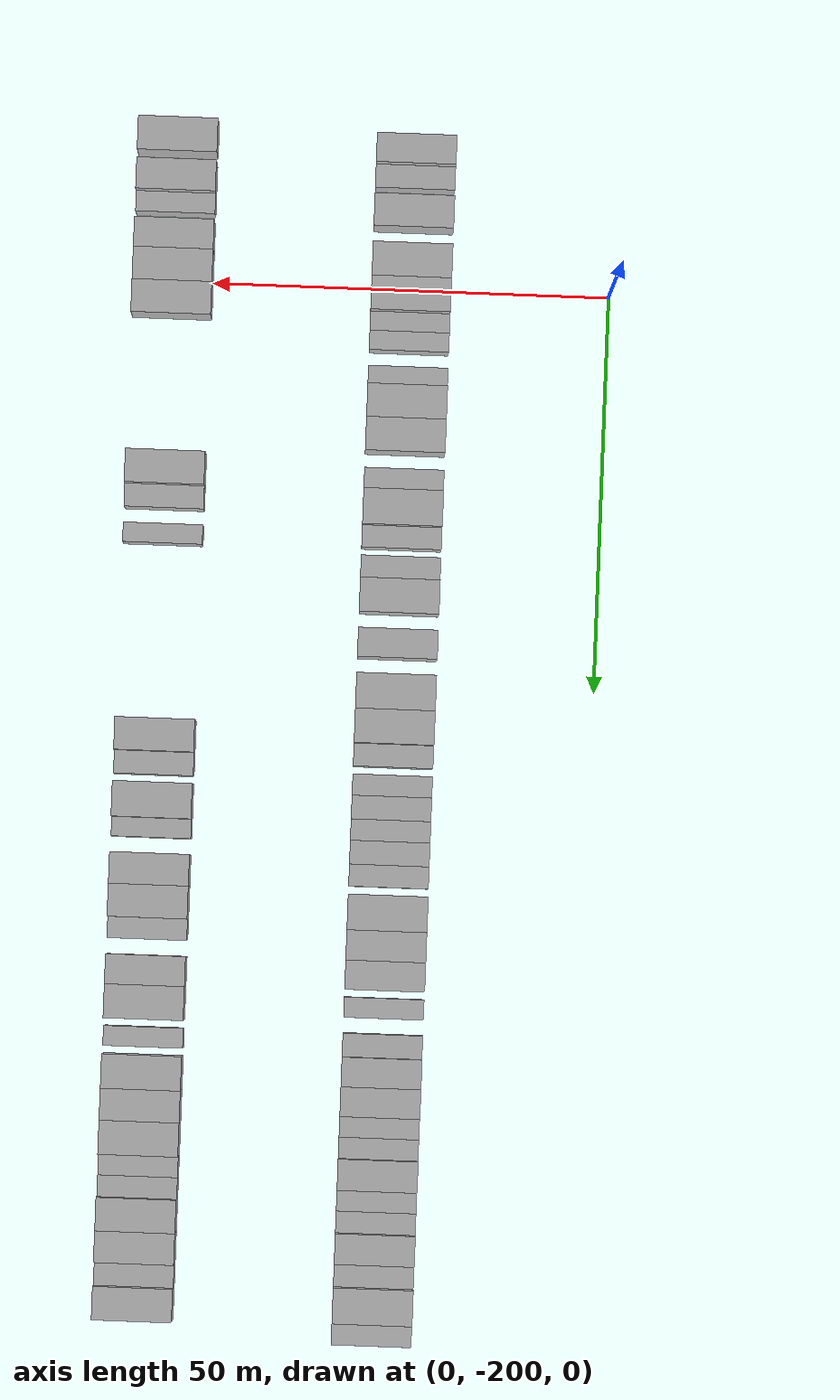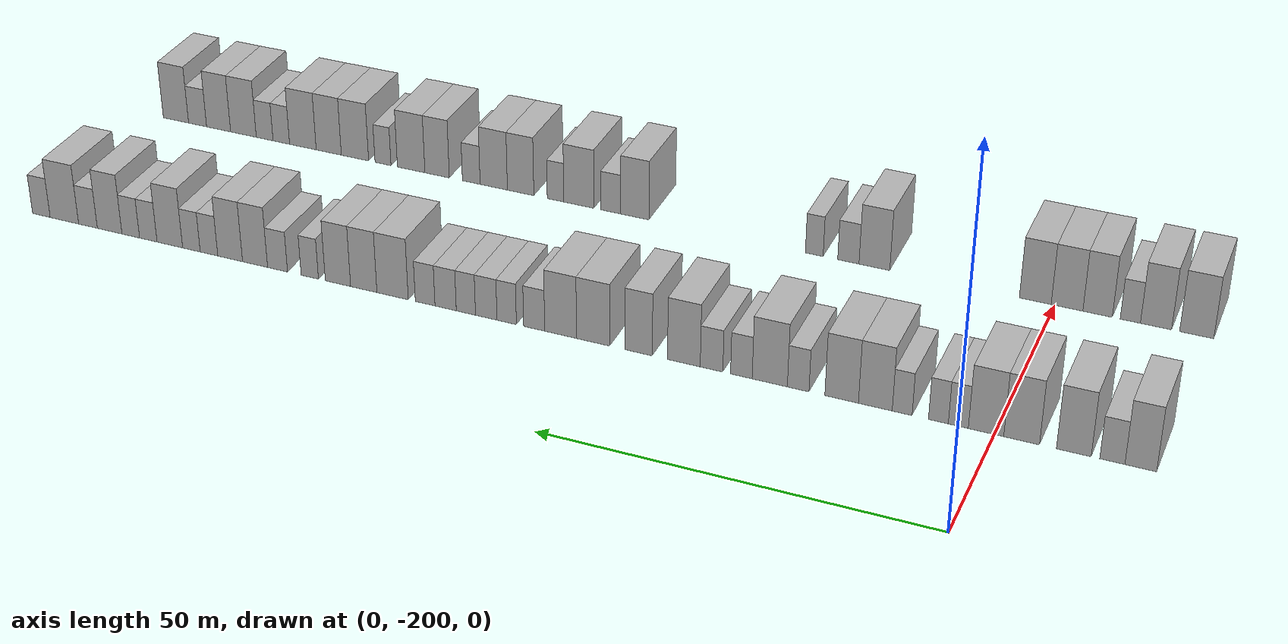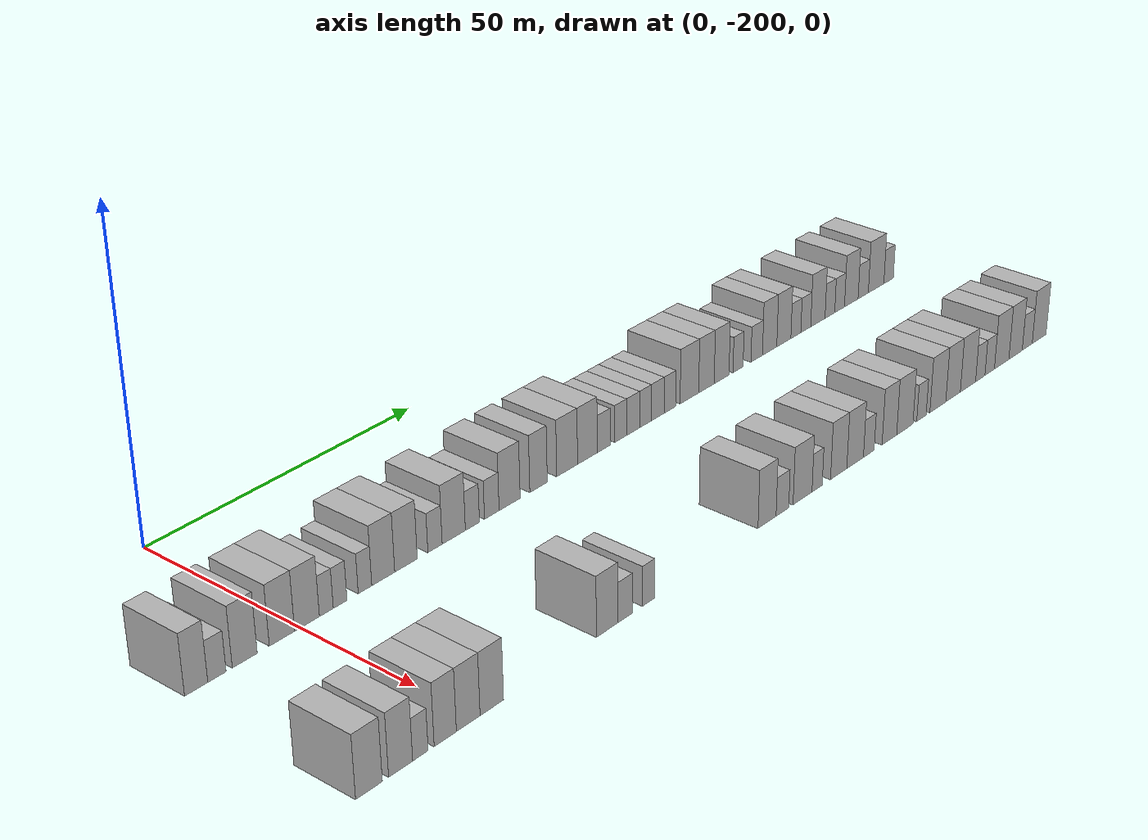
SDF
<sdf version="1.6">
 <world name="default">
  <model name="building_1">
   <static>1</static>
   <pose>25.0000 -217.1671 0 0.000000 0.000000 0.000000</pose>
   <link name="link">
    <pose>0 0 4.50 0 0 0</pose>
    <collision name="collision"><geometry><box><size>10.0000 3.6659 9.0000</size></box></geometry></collision>
    <visual name="visual">
     <cast_shadows>0</cast_shadows>
     <geometry><box><size>10.0000 3.6659 9.0000</size></box></geometry>
     <material>
      <script>
       <uri>model://HANNAS_wall/materials/scripts</uri>
       <uri>model://HANNAS_wall/materials/textures</uri>
       <name>vrc/HANNAS_wall</name>
      </script>
     </material>
    </visual>
   </link>
  </model>
  <model name="building_2">
   <static>1</static>
   <pose>25.0000 -213.8735 0 0.000000 0.000000 0.000000</pose>
   <link name="link">
    <pose>0 0 3.00 0 0 0</pose>
    <collision name="collision"><geometry><box><size>10.0000 2.9212 6.0000</size></box></geometry></collision>
    <visual name="visual">
     <cast_shadows>0</cast_shadows>
     <geometry><box><size>10.0000 2.9212 6.0000</size></box></geometry>
     <material>
      <script>
       <uri>model://HANNAS_wall/materials/scripts</uri>
       <uri>model://HANNAS_wall/materials/textures</uri>
       <name>vrc/HANNAS_wall</name>
      </script>
     </material>
    </visual>
   </link>
  </model>
  <model name="building_3">
   <static>1</static>
   <pose>25.0000 -209.3716 0 0.000000 0.000000 0.000000</pose>
   <link name="link">
    <pose>0 0 4.50 0 0 0</pose>
    <collision name="collision"><geometry><box><size>10.0000 4.0827 9.0000</size></box></geometry></collision>
    <visual name="visual">
     <cast_shadows>0</cast_shadows>
     <geometry><box><size>10.0000 4.0827 9.0000</size></box></geometry>
     <material>
      <script>
       <uri>model://HANNAS_wall/materials/scripts</uri>
       <uri>model://HANNAS_wall/materials/textures</uri>
       <name>vrc/HANNAS_wall</name>
      </script>
     </material>
    </visual>
   </link>
  </model>
  <model name="building_4">
   <static>1</static>
   <pose>25.0000 -203.2001 0 0.000000 0.000000 0.000000</pose>
   <link name="link">
    <pose>0 0 4.50 0 0 0</pose>
    <collision name="collision"><geometry><box><size>10.0000 4.2603 9.0000</size></box></geometry></collision>
    <visual name="visual">
     <cast_shadows>0</cast_shadows>
     <geometry><box><size>10.0000 4.2603 9.0000</size></box></geometry>
     <material>
      <script>
       <uri>model://HANNAS_wall/materials/scripts</uri>
       <uri>model://HANNAS_wall/materials/textures</uri>
       <name>vrc/HANNAS_wall</name>
      </script>
     </material>
    </visual>
   </link>
  </model>
  <model name="building_5">
   <static>1</static>
   <pose>25.0000 -198.9381 0 0.000000 0.000000 0.000000</pose>
   <link name="link">
    <pose>0 0 4.50 0 0 0</pose>
    <collision name="collision"><geometry><box><size>10.0000 4.2636 9.0000</size></box></geometry></collision>
    <visual name="visual">
     <cast_shadows>0</cast_shadows>
     <geometry><box><size>10.0000 4.2636 9.0000</size></box></geometry>
     <material>
      <script>
       <uri>model://HANNAS_wall/materials/scripts</uri>
       <uri>model://HANNAS_wall/materials/textures</uri>
       <name>vrc/HANNAS_wall</name>
      </script>
     </material>
    </visual>
   </link>
  </model>
  <model name="building_6">
   <static>1</static>
   <pose>25.0000 -195.5967 0 0.000000 0.000000 0.000000</pose>
   <link name="link">
    <pose>0 0 3.00 0 0 0</pose>
    <collision name="collision"><geometry><box><size>10.0000 2.4193 6.0000</size></box></geometry></collision>
    <visual name="visual">
     <cast_shadows>0</cast_shadows>
     <geometry><box><size>10.0000 2.4193 6.0000</size></box></geometry>
     <material>
      <script>
       <uri>model://HANNAS_wall/materials/scripts</uri>
       <uri>model://HANNAS_wall/materials/textures</uri>
       <name>vrc/HANNAS_wall</name>
      </script>
     </material>
    </visual>
   </link>
  </model>
  <model name="building_7">
   <static>1</static>
   <pose>25.0000 -193.1771 0 0.000000 0.000000 0.000000</pose>
   <link name="link">
    <pose>0 0 3.00 0 0 0</pose>
    <collision name="collision"><geometry><box><size>10.0000 2.4199 6.0000</size></box></geometry></collision>
    <visual name="visual">
     <cast_shadows>0</cast_shadows>
     <geometry><box><size>10.0000 2.4199 6.0000</size></box></geometry>
     <material>
      <script>
       <uri>model://HANNAS_wall/materials/scripts</uri>
       <uri>model://HANNAS_wall/materials/textures</uri>
       <name>vrc/HANNAS_wall</name>
      </script>
     </material>
    </visual>
   </link>
  </model>
  <model name="building_8">
   <static>1</static>
   <pose>25.0000 -188.7444 0 0.000000 0.000000 0.000000</pose>
   <link name="link">
    <pose>0 0 3.00 0 0 0</pose>
    <collision name="collision"><geometry><box><size>10.0000 2.4454 6.0000</size></box></geometry></collision>
    <visual name="visual">
     <cast_shadows>0</cast_shadows>
     <geometry><box><size>10.0000 2.4454 6.0000</size></box></geometry>
     <material>
      <script>
       <uri>model://HANNAS_wall/materials/scripts</uri>
       <uri>model://HANNAS_wall/materials/textures</uri>
       <name>vrc/HANNAS_wall</name>
      </script>
     </material>
    </visual>
   </link>
  </model>
  <model name="building_9">
   <static>1</static>
   <pose>25.0000 -185.4251 0 0.000000 0.000000 0.000000</pose>
   <link name="link">
    <pose>0 0 4.50 0 0 0</pose>
    <collision name="collision"><geometry><box><size>10.0000 4.1932 9.0000</size></box></geometry></collision>
    <visual name="visual">
     <cast_shadows>0</cast_shadows>
     <geometry><box><size>10.0000 4.1932 9.0000</size></box></geometry>
     <material>
      <script>
       <uri>model://HANNAS_wall/materials/scripts</uri>
       <uri>model://HANNAS_wall/materials/textures</uri>
       <name>vrc/HANNAS_wall</name>
      </script>
     </material>
    </visual>
   </link>
  </model>
  <model name="building_10">
   <static>1</static>
   <pose>25.0000 -181.2285 0 0.000000 0.000000 0.000000</pose>
   <link name="link">
    <pose>0 0 4.50 0 0 0</pose>
    <collision name="collision"><geometry><box><size>10.0000 4.2000 9.0000</size></box></geometry></collision>
    <visual name="visual">
     <cast_shadows>0</cast_shadows>
     <geometry><box><size>10.0000 4.2000 9.0000</size></box></geometry>
     <material>
      <script>
       <uri>model://HANNAS_wall/materials/scripts</uri>
       <uri>model://HANNAS_wall/materials/textures</uri>
       <name>vrc/HANNAS_wall</name>
      </script>
     </material>
    </visual>
   </link>
  </model>
  <model name="building_11">
   <static>1</static>
   <pose>25.0000 -175.7591 0 0.000000 0.000000 0.000000</pose>
   <link name="link">
    <pose>0 0 3.00 0 0 0</pose>
    <collision name="collision"><geometry><box><size>10.0000 2.7388 6.0000</size></box></geometry></collision>
    <visual name="visual">
     <cast_shadows>0</cast_shadows>
     <geometry><box><size>10.0000 2.7388 6.0000</size></box></geometry>
     <material>
      <script>
       <uri>model://HANNAS_wall/materials/scripts</uri>
       <uri>model://HANNAS_wall/materials/textures</uri>
       <name>vrc/HANNAS_wall</name>
      </script>
     </material>
    </visual>
   </link>
  </model>
  <model name="building_12">
   <static>1</static>
   <pose>25.0000 -172.1402 0 0.000000 0.000000 0.000000</pose>
   <link name="link">
    <pose>0 0 4.50 0 0 0</pose>
    <collision name="collision"><geometry><box><size>10.0000 4.4991 9.0000</size></box></geometry></collision>
    <visual name="visual">
     <cast_shadows>0</cast_shadows>
     <geometry><box><size>10.0000 4.4991 9.0000</size></box></geometry>
     <material>
      <script>
       <uri>model://HANNAS_wall/materials/scripts</uri>
       <uri>model://HANNAS_wall/materials/textures</uri>
       <name>vrc/HANNAS_wall</name>
      </script>
     </material>
    </visual>
   </link>
  </model>
  <model name="building_13">
   <static>1</static>
   <pose>25.0000 -168.5023 0 0.000000 0.000000 0.000000</pose>
   <link name="link">
    <pose>0 0 3.00 0 0 0</pose>
    <collision name="collision"><geometry><box><size>10.0000 2.7767 6.0000</size></box></geometry></collision>
    <visual name="visual">
     <cast_shadows>0</cast_shadows>
     <geometry><box><size>10.0000 2.7767 6.0000</size></box></geometry>
     <material>
      <script>
       <uri>model://HANNAS_wall/materials/scripts</uri>
       <uri>model://HANNAS_wall/materials/textures</uri>
       <name>vrc/HANNAS_wall</name>
      </script>
     </material>
    </visual>
   </link>
  </model>
  <model name="building_14">
   <static>1</static>
   <pose>25.0000 -164.6484 0 0.000000 0.000000 0.000000</pose>
   <link name="link">
    <pose>0 0 3.00 0 0 0</pose>
    <collision name="collision"><geometry><box><size>10.0000 2.9310 6.0000</size></box></geometry></collision>
    <visual name="visual">
     <cast_shadows>0</cast_shadows>
     <geometry><box><size>10.0000 2.9310 6.0000</size></box></geometry>
     <material>
      <script>
       <uri>model://HANNAS_wall/materials/scripts</uri>
       <uri>model://HANNAS_wall/materials/textures</uri>
       <name>vrc/HANNAS_wall</name>
      </script>
     </material>
    </visual>
   </link>
  </model>
  <model name="building_15">
   <static>1</static>
   <pose>25.0000 -161.0380 0 0.000000 0.000000 0.000000</pose>
   <link name="link">
    <pose>0 0 4.50 0 0 0</pose>
    <collision name="collision"><geometry><box><size>10.0000 4.2898 9.0000</size></box></geometry></collision>
    <visual name="visual">
     <cast_shadows>0</cast_shadows>
     <geometry><box><size>10.0000 4.2898 9.0000</size></box></geometry>
     <material>
      <script>
       <uri>model://HANNAS_wall/materials/scripts</uri>
       <uri>model://HANNAS_wall/materials/textures</uri>
       <name>vrc/HANNAS_wall</name>
      </script>
     </material>
    </visual>
   </link>
  </model>
  <model name="building_16">
   <static>1</static>
   <pose>25.0000 -155.0702 0 0.000000 0.000000 0.000000</pose>
   <link name="link">
    <pose>0 0 4.50 0 0 0</pose>
    <collision name="collision"><geometry><box><size>10.0000 3.6458 9.0000</size></box></geometry></collision>
    <visual name="visual">
     <cast_shadows>0</cast_shadows>
     <geometry><box><size>10.0000 3.6458 9.0000</size></box></geometry>
     <material>
      <script>
       <uri>model://HANNAS_wall/materials/scripts</uri>
       <uri>model://HANNAS_wall/materials/textures</uri>
       <name>vrc/HANNAS_wall</name>
      </script>
     </material>
    </visual>
   </link>
  </model>
  <model name="building_17">
   <static>1</static>
   <pose>25.0000 -149.0126 0 0.000000 0.000000 0.000000</pose>
   <link name="link">
    <pose>0 0 4.50 0 0 0</pose>
    <collision name="collision"><geometry><box><size>10.0000 4.4693 9.0000</size></box></geometry></collision>
    <visual name="visual">
     <cast_shadows>0</cast_shadows>
     <geometry><box><size>10.0000 4.4693 9.0000</size></box></geometry>
     <material>
      <script>
       <uri>model://HANNAS_wall/materials/scripts</uri>
       <uri>model://HANNAS_wall/materials/textures</uri>
       <name>vrc/HANNAS_wall</name>
      </script>
     </material>
    </visual>
   </link>
  </model>
  <model name="building_18">
   <static>1</static>
   <pose>25.0000 -144.6236 0 0.000000 0.000000 0.000000</pose>
   <link name="link">
    <pose>0 0 4.50 0 0 0</pose>
    <collision name="collision"><geometry><box><size>10.0000 4.3088 9.0000</size></box></geometry></collision>
    <visual name="visual">
     <cast_shadows>0</cast_shadows>
     <geometry><box><size>10.0000 4.3088 9.0000</size></box></geometry>
     <material>
      <script>
       <uri>model://HANNAS_wall/materials/scripts</uri>
       <uri>model://HANNAS_wall/materials/textures</uri>
       <name>vrc/HANNAS_wall</name>
      </script>
     </material>
    </visual>
   </link>
  </model>
  <model name="building_19">
   <static>1</static>
   <pose>25.0000 -141.0324 0 0.000000 0.000000 0.000000</pose>
   <link name="link">
    <pose>0 0 3.00 0 0 0</pose>
    <collision name="collision"><geometry><box><size>10.0000 2.8735 6.0000</size></box></geometry></collision>
    <visual name="visual">
     <cast_shadows>0</cast_shadows>
     <geometry><box><size>10.0000 2.8735 6.0000</size></box></geometry>
     <material>
      <script>
       <uri>model://HANNAS_wall/materials/scripts</uri>
       <uri>model://HANNAS_wall/materials/textures</uri>
       <name>vrc/HANNAS_wall</name>
      </script>
     </material>
    </visual>
   </link>
  </model>
  <model name="building_20">
   <static>1</static>
   <pose>25.0000 -137.2617 0 0.000000 0.000000 0.000000</pose>
   <link name="link">
    <pose>0 0 3.00 0 0 0</pose>
    <collision name="collision"><geometry><box><size>10.0000 2.6680 6.0000</size></box></geometry></collision>
    <visual name="visual">
     <cast_shadows>0</cast_shadows>
     <geometry><box><size>10.0000 2.6680 6.0000</size></box></geometry>
     <material>
      <script>
       <uri>model://HANNAS_wall/materials/scripts</uri>
       <uri>model://HANNAS_wall/materials/textures</uri>
       <name>vrc/HANNAS_wall</name>
      </script>
     </material>
    </visual>
   </link>
  </model>
  <model name="building_21">
   <static>1</static>
   <pose>25.0000 -134.4380 0 0.000000 0.000000 0.000000</pose>
   <link name="link">
    <pose>0 0 3.00 0 0 0</pose>
    <collision name="collision"><geometry><box><size>10.0000 2.9795 6.0000</size></box></geometry></collision>
    <visual name="visual">
     <cast_shadows>0</cast_shadows>
     <geometry><box><size>10.0000 2.9795 6.0000</size></box></geometry>
     <material>
      <script>
       <uri>model://HANNAS_wall/materials/scripts</uri>
       <uri>model://HANNAS_wall/materials/textures</uri>
       <name>vrc/HANNAS_wall</name>
      </script>
     </material>
    </visual>
   </link>
  </model>
  <model name="building_22">
   <static>1</static>
   <pose>25.0000 -131.6081 0 0.000000 0.000000 0.000000</pose>
   <link name="link">
    <pose>0 0 3.00 0 0 0</pose>
    <collision name="collision"><geometry><box><size>10.0000 2.6803 6.0000</size></box></geometry></collision>
    <visual name="visual">
     <cast_shadows>0</cast_shadows>
     <geometry><box><size>10.0000 2.6803 6.0000</size></box></geometry>
     <material>
      <script>
       <uri>model://HANNAS_wall/materials/scripts</uri>
       <uri>model://HANNAS_wall/materials/textures</uri>
       <name>vrc/HANNAS_wall</name>
      </script>
     </material>
    </visual>
   </link>
  </model>
  <model name="building_23">
   <static>1</static>
   <pose>25.0000 -128.7739 0 0.000000 0.000000 0.000000</pose>
   <link name="link">
    <pose>0 0 3.00 0 0 0</pose>
    <collision name="collision"><geometry><box><size>10.0000 2.9879 6.0000</size></box></geometry></collision>
    <visual name="visual">
     <cast_shadows>0</cast_shadows>
     <geometry><box><size>10.0000 2.9879 6.0000</size></box></geometry>
     <material>
      <script>
       <uri>model://HANNAS_wall/materials/scripts</uri>
       <uri>model://HANNAS_wall/materials/textures</uri>
       <name>vrc/HANNAS_wall</name>
      </script>
     </material>
    </visual>
   </link>
  </model>
  <model name="building_24">
   <static>1</static>
   <pose>25.0000 -125.8931 0 0.000000 0.000000 0.000000</pose>
   <link name="link">
    <pose>0 0 3.00 0 0 0</pose>
    <collision name="collision"><geometry><box><size>10.0000 2.7739 6.0000</size></box></geometry></collision>
    <visual name="visual">
     <cast_shadows>0</cast_shadows>
     <geometry><box><size>10.0000 2.7739 6.0000</size></box></geometry>
     <material>
      <script>
       <uri>model://HANNAS_wall/materials/scripts</uri>
       <uri>model://HANNAS_wall/materials/textures</uri>
       <name>vrc/HANNAS_wall</name>
      </script>
     </material>
    </visual>
   </link>
  </model>
  <model name="building_25">
   <static>1</static>
   <pose>25.0000 -121.2723 0 0.000000 0.000000 0.000000</pose>
   <link name="link">
    <pose>0 0 4.50 0 0 0</pose>
    <collision name="collision"><geometry><box><size>10.0000 4.4677 9.0000</size></box></geometry></collision>
    <visual name="visual">
     <cast_shadows>0</cast_shadows>
     <geometry><box><size>10.0000 4.4677 9.0000</size></box></geometry>
     <material>
      <script>
       <uri>model://HANNAS_wall/materials/scripts</uri>
       <uri>model://HANNAS_wall/materials/textures</uri>
       <name>vrc/HANNAS_wall</name>
      </script>
     </material>
    </visual>
   </link>
  </model>
  <model name="building_26">
   <static>1</static>
   <pose>25.0000 -117.1486 0 0.000000 0.000000 0.000000</pose>
   <link name="link">
    <pose>0 0 4.50 0 0 0</pose>
    <collision name="collision"><geometry><box><size>10.0000 3.7798 9.0000</size></box></geometry></collision>
    <visual name="visual">
     <cast_shadows>0</cast_shadows>
     <geometry><box><size>10.0000 3.7798 9.0000</size></box></geometry>
     <material>
      <script>
       <uri>model://HANNAS_wall/materials/scripts</uri>
       <uri>model://HANNAS_wall/materials/textures</uri>
       <name>vrc/HANNAS_wall</name>
      </script>
     </material>
    </visual>
   </link>
  </model>
  <model name="building_27">
   <static>1</static>
   <pose>25.0000 -113.4258 0 0.000000 0.000000 0.000000</pose>
   <link name="link">
    <pose>0 0 4.50 0 0 0</pose>
    <collision name="collision"><geometry><box><size>10.0000 3.6658 9.0000</size></box></geometry></collision>
    <visual name="visual">
     <cast_shadows>0</cast_shadows>
     <geometry><box><size>10.0000 3.6658 9.0000</size></box></geometry>
     <material>
      <script>
       <uri>model://HANNAS_wall/materials/scripts</uri>
       <uri>model://HANNAS_wall/materials/textures</uri>
       <name>vrc/HANNAS_wall</name>
      </script>
     </material>
    </visual>
   </link>
  </model>
  <model name="building_28">
   <static>1</static>
   <pose>25.0000 -109.3301 0 0.000000 0.000000 0.000000</pose>
   <link name="link">
    <pose>0 0 3.00 0 0 0</pose>
    <collision name="collision"><geometry><box><size>10.0000 2.5256 6.0000</size></box></geometry></collision>
    <visual name="visual">
     <cast_shadows>0</cast_shadows>
     <geometry><box><size>10.0000 2.5256 6.0000</size></box></geometry>
     <material>
      <script>
       <uri>model://HANNAS_wall/materials/scripts</uri>
       <uri>model://HANNAS_wall/materials/textures</uri>
       <name>vrc/HANNAS_wall</name>
      </script>
     </material>
    </visual>
   </link>
  </model>
  <model name="building_29">
   <static>1</static>
   <pose>25.0000 -104.5966 0 0.000000 0.000000 0.000000</pose>
   <link name="link">
    <pose>0 0 3.00 0 0 0</pose>
    <collision name="collision"><geometry><box><size>10.0000 2.9414 6.0000</size></box></geometry></collision>
    <visual name="visual">
     <cast_shadows>0</cast_shadows>
     <geometry><box><size>10.0000 2.9414 6.0000</size></box></geometry>
     <material>
      <script>
       <uri>model://HANNAS_wall/materials/scripts</uri>
       <uri>model://HANNAS_wall/materials/textures</uri>
       <name>vrc/HANNAS_wall</name>
      </script>
     </material>
    </visual>
   </link>
  </model>
  <model name="building_30">
   <static>1</static>
   <pose>25.0000 -101.2687 0 0.000000 0.000000 0.000000</pose>
   <link name="link">
    <pose>0 0 4.50 0 0 0</pose>
    <collision name="collision"><geometry><box><size>10.0000 3.7144 9.0000</size></box></geometry></collision>
    <visual name="visual">
     <cast_shadows>0</cast_shadows>
     <geometry><box><size>10.0000 3.7144 9.0000</size></box></geometry>
     <material>
      <script>
       <uri>model://HANNAS_wall/materials/scripts</uri>
       <uri>model://HANNAS_wall/materials/textures</uri>
       <name>vrc/HANNAS_wall</name>
      </script>
     </material>
    </visual>
   </link>
  </model>
  <model name="building_31">
   <static>1</static>
   <pose>25.0000 -97.5562 0 0.000000 0.000000 0.000000</pose>
   <link name="link">
    <pose>0 0 4.50 0 0 0</pose>
    <collision name="collision"><geometry><box><size>10.0000 3.7105 9.0000</size></box></geometry></collision>
    <visual name="visual">
     <cast_shadows>0</cast_shadows>
     <geometry><box><size>10.0000 3.7105 9.0000</size></box></geometry>
     <material>
      <script>
       <uri>model://HANNAS_wall/materials/scripts</uri>
       <uri>model://HANNAS_wall/materials/textures</uri>
       <name>vrc/HANNAS_wall</name>
      </script>
     </material>
    </visual>
   </link>
  </model>
  <model name="building_32">
   <static>1</static>
   <pose>25.0000 -94.3791 0 0.000000 0.000000 0.000000</pose>
   <link name="link">
    <pose>0 0 3.00 0 0 0</pose>
    <collision name="collision"><geometry><box><size>10.0000 2.6438 6.0000</size></box></geometry></collision>
    <visual name="visual">
     <cast_shadows>0</cast_shadows>
     <geometry><box><size>10.0000 2.6438 6.0000</size></box></geometry>
     <material>
      <script>
       <uri>model://HANNAS_wall/materials/scripts</uri>
       <uri>model://HANNAS_wall/materials/textures</uri>
       <name>vrc/HANNAS_wall</name>
      </script>
     </material>
    </visual>
   </link>
  </model>
  <model name="building_33">
   <static>1</static>
   <pose>25.0000 -91.7267 0 0.000000 0.000000 0.000000</pose>
   <link name="link">
    <pose>0 0 3.00 0 0 0</pose>
    <collision name="collision"><geometry><box><size>10.0000 2.6610 6.0000</size></box></geometry></collision>
    <visual name="visual">
     <cast_shadows>0</cast_shadows>
     <geometry><box><size>10.0000 2.6610 6.0000</size></box></geometry>
     <material>
      <script>
       <uri>model://HANNAS_wall/materials/scripts</uri>
       <uri>model://HANNAS_wall/materials/textures</uri>
       <name>vrc/HANNAS_wall</name>
      </script>
     </material>
    </visual>
   </link>
  </model>
  <model name="building_34">
   <static>1</static>
   <pose>25.0000 -88.4462 0 0.000000 0.000000 0.000000</pose>
   <link name="link">
    <pose>0 0 4.50 0 0 0</pose>
    <collision name="collision"><geometry><box><size>10.0000 3.9000 9.0000</size></box></geometry></collision>
    <visual name="visual">
     <cast_shadows>0</cast_shadows>
     <geometry><box><size>10.0000 3.9000 9.0000</size></box></geometry>
     <material>
      <script>
       <uri>model://HANNAS_wall/materials/scripts</uri>
       <uri>model://HANNAS_wall/materials/textures</uri>
       <name>vrc/HANNAS_wall</name>
      </script>
     </material>
    </visual>
   </link>
  </model>
  <model name="building_35">
   <static>1</static>
   <pose>25.0000 -85.1547 0 0.000000 0.000000 0.000000</pose>
   <link name="link">
    <pose>0 0 3.00 0 0 0</pose>
    <collision name="collision"><geometry><box><size>10.0000 2.6829 6.0000</size></box></geometry></collision>
    <visual name="visual">
     <cast_shadows>0</cast_shadows>
     <geometry><box><size>10.0000 2.6829 6.0000</size></box></geometry>
     <material>
      <script>
       <uri>model://HANNAS_wall/materials/scripts</uri>
       <uri>model://HANNAS_wall/materials/textures</uri>
       <name>vrc/HANNAS_wall</name>
      </script>
     </material>
    </visual>
   </link>
  </model>
  <model name="building_36">
   <static>1</static>
   <pose>25.0000 -82.4580 0 0.000000 0.000000 0.000000</pose>
   <link name="link">
    <pose>0 0 3.00 0 0 0</pose>
    <collision name="collision"><geometry><box><size>10.0000 2.7106 6.0000</size></box></geometry></collision>
    <visual name="visual">
     <cast_shadows>0</cast_shadows>
     <geometry><box><size>10.0000 2.7106 6.0000</size></box></geometry>
     <material>
      <script>
       <uri>model://HANNAS_wall/materials/scripts</uri>
       <uri>model://HANNAS_wall/materials/textures</uri>
       <name>vrc/HANNAS_wall</name>
      </script>
     </material>
    </visual>
   </link>
  </model>
  <model name="building_37">
   <static>1</static>
   <pose>25.0000 -79.1855 0 0.000000 0.000000 0.000000</pose>
   <link name="link">
    <pose>0 0 4.50 0 0 0</pose>
    <collision name="collision"><geometry><box><size>10.0000 3.8344 9.0000</size></box></geometry></collision>
    <visual name="visual">
     <cast_shadows>0</cast_shadows>
     <geometry><box><size>10.0000 3.8344 9.0000</size></box></geometry>
     <material>
      <script>
       <uri>model://HANNAS_wall/materials/scripts</uri>
       <uri>model://HANNAS_wall/materials/textures</uri>
       <name>vrc/HANNAS_wall</name>
      </script>
     </material>
    </visual>
   </link>
  </model>
  <model name="building_38">
   <static>1</static>
   <pose>25.0000 -75.8074 0 0.000000 0.000000 0.000000</pose>
   <link name="link">
    <pose>0 0 3.00 0 0 0</pose>
    <collision name="collision"><geometry><box><size>10.0000 2.9218 6.0000</size></box></geometry></collision>
    <visual name="visual">
     <cast_shadows>0</cast_shadows>
     <geometry><box><size>10.0000 2.9218 6.0000</size></box></geometry>
     <material>
      <script>
       <uri>model://HANNAS_wall/materials/scripts</uri>
       <uri>model://HANNAS_wall/materials/textures</uri>
       <name>vrc/HANNAS_wall</name>
      </script>
     </material>
    </visual>
   </link>
  </model>
  <model name="building_39">
   <static>1</static>
   <pose>25.0000 -72.1008 0 0.000000 0.000000 0.000000</pose>
   <link name="link">
    <pose>0 0 4.50 0 0 0</pose>
    <collision name="collision"><geometry><box><size>10.0000 4.4913 9.0000</size></box></geometry></collision>
    <visual name="visual">
     <cast_shadows>0</cast_shadows>
     <geometry><box><size>10.0000 4.4913 9.0000</size></box></geometry>
     <material>
      <script>
       <uri>model://HANNAS_wall/materials/scripts</uri>
       <uri>model://HANNAS_wall/materials/textures</uri>
       <name>vrc/HANNAS_wall</name>
      </script>
     </material>
    </visual>
   </link>
  </model>
  <model name="building_40">
   <static>1</static>
   <pose>25.0000 -68.4680 0 0.000000 0.000000 0.000000</pose>
   <link name="link">
    <pose>0 0 3.00 0 0 0</pose>
    <collision name="collision"><geometry><box><size>10.0000 2.7743 6.0000</size></box></geometry></collision>
    <visual name="visual">
     <cast_shadows>0</cast_shadows>
     <geometry><box><size>10.0000 2.7743 6.0000</size></box></geometry>
     <material>
      <script>
       <uri>model://HANNAS_wall/materials/scripts</uri>
       <uri>model://HANNAS_wall/materials/textures</uri>
       <name>vrc/HANNAS_wall</name>
      </script>
     </material>
    </visual>
   </link>
  </model>
  <model name="building_110">
   <static>1</static>
   <pose>55.0000 -217.8794 0 0.000000 0.000000 0.000000</pose>
   <link name="link">
    <pose>0 0 4.50 0 0 0</pose>
    <collision name="collision"><geometry><box><size>10.0000 4.2413 9.0000</size></box></geometry></collision>
    <visual name="visual">
     <cast_shadows>0</cast_shadows>
     <geometry><box><size>10.0000 4.2413 9.0000</size></box></geometry>
     <material>
      <script>
       <uri>model://HANNAS_wall/materials/scripts</uri>
       <uri>model://HANNAS_wall/materials/textures</uri>
       <name>vrc/HANNAS_wall</name>
      </script>
     </material>
    </visual>
   </link>
  </model>
  <model name="building_111">
   <static>1</static>
   <pose>55.0000 -212.8032 0 0.000000 0.000000 0.000000</pose>
   <link name="link">
    <pose>0 0 4.50 0 0 0</pose>
    <collision name="collision"><geometry><box><size>10.0000 3.9111 9.0000</size></box></geometry></collision>
    <visual name="visual">
     <cast_shadows>0</cast_shadows>
     <geometry><box><size>10.0000 3.9111 9.0000</size></box></geometry>
     <material>
      <script>
       <uri>model://HANNAS_wall/materials/scripts</uri>
       <uri>model://HANNAS_wall/materials/textures</uri>
       <name>vrc/HANNAS_wall</name>
      </script>
     </material>
    </visual>
   </link>
  </model>
  <model name="building_112">
   <static>1</static>
   <pose>55.0000 -209.5708 0 0.000000 0.000000 0.000000</pose>
   <link name="link">
    <pose>0 0 3.00 0 0 0</pose>
    <collision name="collision"><geometry><box><size>10.0000 2.5537 6.0000</size></box></geometry></collision>
    <visual name="visual">
     <cast_shadows>0</cast_shadows>
     <geometry><box><size>10.0000 2.5537 6.0000</size></box></geometry>
     <material>
      <script>
       <uri>model://HANNAS_wall/materials/scripts</uri>
       <uri>model://HANNAS_wall/materials/textures</uri>
       <name>vrc/HANNAS_wall</name>
      </script>
     </material>
    </visual>
   </link>
  </model>
  <model name="building_113">
   <static>1</static>
   <pose>55.0000 -205.4182 0 0.000000 0.000000 0.000000</pose>
   <link name="link">
    <pose>0 0 4.50 0 0 0</pose>
    <collision name="collision"><geometry><box><size>10.0000 3.7514 9.0000</size></box></geometry></collision>
    <visual name="visual">
     <cast_shadows>0</cast_shadows>
     <geometry><box><size>10.0000 3.7514 9.0000</size></box></geometry>
     <material>
      <script>
       <uri>model://HANNAS_wall/materials/scripts</uri>
       <uri>model://HANNAS_wall/materials/textures</uri>
       <name>vrc/HANNAS_wall</name>
      </script>
     </material>
    </visual>
   </link>
  </model>
  <model name="building_114">
   <static>1</static>
   <pose>55.0000 -201.5051 0 0.000000 0.000000 0.000000</pose>
   <link name="link">
    <pose>0 0 4.50 0 0 0</pose>
    <collision name="collision"><geometry><box><size>10.0000 4.0747 9.0000</size></box></geometry></collision>
    <visual name="visual">
     <cast_shadows>0</cast_shadows>
     <geometry><box><size>10.0000 4.0747 9.0000</size></box></geometry>
     <material>
      <script>
       <uri>model://HANNAS_wall/materials/scripts</uri>
       <uri>model://HANNAS_wall/materials/textures</uri>
       <name>vrc/HANNAS_wall</name>
      </script>
     </material>
    </visual>
   </link>
  </model>
  <model name="building_115">
   <static>1</static>
   <pose>55.0000 -197.4074 0 0.000000 0.000000 0.000000</pose>
   <link name="link">
    <pose>0 0 4.50 0 0 0</pose>
    <collision name="collision"><geometry><box><size>10.0000 4.1208 9.0000</size></box></geometry></collision>
    <visual name="visual">
     <cast_shadows>0</cast_shadows>
     <geometry><box><size>10.0000 4.1208 9.0000</size></box></geometry>
     <material>
      <script>
       <uri>model://HANNAS_wall/materials/scripts</uri>
       <uri>model://HANNAS_wall/materials/textures</uri>
       <name>vrc/HANNAS_wall</name>
      </script>
     </material>
    </visual>
   </link>
  </model>
  <model name="building_116">
   <static>1</static>
   <pose>55.0000 -176.0904 0 0.000000 0.000000 0.000000</pose>
   <link name="link">
    <pose>0 0 4.50 0 0 0</pose>
    <collision name="collision"><geometry><box><size>10.0000 4.1710 9.0000</size></box></geometry></collision>
    <visual name="visual">
     <cast_shadows>0</cast_shadows>
     <geometry><box><size>10.0000 4.1710 9.0000</size></box></geometry>
     <material>
      <script>
       <uri>model://HANNAS_wall/materials/scripts</uri>
       <uri>model://HANNAS_wall/materials/textures</uri>
       <name>vrc/HANNAS_wall</name>
      </script>
     </material>
    </visual>
   </link>
  </model>
  <model name="building_117">
   <static>1</static>
   <pose>55.0000 -172.5533 0 0.000000 0.000000 0.000000</pose>
   <link name="link">
    <pose>0 0 3.00 0 0 0</pose>
    <collision name="collision"><geometry><box><size>10.0000 2.9031 6.0000</size></box></geometry></collision>
    <visual name="visual">
     <cast_shadows>0</cast_shadows>
     <geometry><box><size>10.0000 2.9031 6.0000</size></box></geometry>
     <material>
      <script>
       <uri>model://HANNAS_wall/materials/scripts</uri>
       <uri>model://HANNAS_wall/materials/textures</uri>
       <name>vrc/HANNAS_wall</name>
      </script>
     </material>
    </visual>
   </link>
  </model>
  <model name="building_118">
   <static>1</static>
   <pose>55.0000 -167.8810 0 0.000000 0.000000 0.000000</pose>
   <link name="link">
    <pose>0 0 3.00 0 0 0</pose>
    <collision name="collision"><geometry><box><size>10.0000 2.4414 6.0000</size></box></geometry></collision>
    <visual name="visual">
     <cast_shadows>0</cast_shadows>
     <geometry><box><size>10.0000 2.4414 6.0000</size></box></geometry>
     <material>
      <script>
       <uri>model://HANNAS_wall/materials/scripts</uri>
       <uri>model://HANNAS_wall/materials/textures</uri>
       <name>vrc/HANNAS_wall</name>
      </script>
     </material>
    </visual>
   </link>
  </model>
  <model name="building_119">
   <static>1</static>
   <pose>55.0000 -142.5205 0 0.000000 0.000000 0.000000</pose>
   <link name="link">
    <pose>0 0 4.50 0 0 0</pose>
    <collision name="collision"><geometry><box><size>10.0000 4.0932 9.0000</size></box></geometry></collision>
    <visual name="visual">
     <cast_shadows>0</cast_shadows>
     <geometry><box><size>10.0000 4.0932 9.0000</size></box></geometry>
     <material>
      <script>
       <uri>model://HANNAS_wall/materials/scripts</uri>
       <uri>model://HANNAS_wall/materials/textures</uri>
       <name>vrc/HANNAS_wall</name>
      </script>
     </material>
    </visual>
   </link>
  </model>
  <model name="building_120">
   <static>1</static>
   <pose>55.0000 -139.0189 0 0.000000 0.000000 0.000000</pose>
   <link name="link">
    <pose>0 0 3.00 0 0 0</pose>
    <collision name="collision"><geometry><box><size>10.0000 2.9101 6.0000</size></box></geometry></collision>
    <visual name="visual">
     <cast_shadows>0</cast_shadows>
     <geometry><box><size>10.0000 2.9101 6.0000</size></box></geometry>
     <material>
      <script>
       <uri>model://HANNAS_wall/materials/scripts</uri>
       <uri>model://HANNAS_wall/materials/textures</uri>
       <name>vrc/HANNAS_wall</name>
      </script>
     </material>
    </visual>
   </link>
  </model>
  <model name="building_121">
   <static>1</static>
   <pose>55.0000 -134.3386 0 0.000000 0.000000 0.000000</pose>
   <link name="link">
    <pose>0 0 4.50 0 0 0</pose>
    <collision name="collision"><geometry><box><size>10.0000 4.4504 9.0000</size></box></geometry></collision>
    <visual name="visual">
     <cast_shadows>0</cast_shadows>
     <geometry><box><size>10.0000 4.4504 9.0000</size></box></geometry>
     <material>
      <script>
       <uri>model://HANNAS_wall/materials/scripts</uri>
       <uri>model://HANNAS_wall/materials/textures</uri>
       <name>vrc/HANNAS_wall</name>
      </script>
     </material>
    </visual>
   </link>
  </model>
  <model name="building_122">
   <static>1</static>
   <pose>55.0000 -130.8919 0 0.000000 0.000000 0.000000</pose>
   <link name="link">
    <pose>0 0 3.00 0 0 0</pose>
    <collision name="collision"><geometry><box><size>10.0000 2.4430 6.0000</size></box></geometry></collision>
    <visual name="visual">
     <cast_shadows>0</cast_shadows>
     <geometry><box><size>10.0000 2.4430 6.0000</size></box></geometry>
     <material>
      <script>
       <uri>model://HANNAS_wall/materials/scripts</uri>
       <uri>model://HANNAS_wall/materials/textures</uri>
       <name>vrc/HANNAS_wall</name>
      </script>
     </material>
    </visual>
   </link>
  </model>
  <model name="building_123">
   <static>1</static>
   <pose>55.0000 -125.6906 0 0.000000 0.000000 0.000000</pose>
   <link name="link">
    <pose>0 0 4.50 0 0 0</pose>
    <collision name="collision"><geometry><box><size>10.0000 3.9597 9.0000</size></box></geometry></collision>
    <visual name="visual">
     <cast_shadows>0</cast_shadows>
     <geometry><box><size>10.0000 3.9597 9.0000</size></box></geometry>
     <material>
      <script>
       <uri>model://HANNAS_wall/materials/scripts</uri>
       <uri>model://HANNAS_wall/materials/textures</uri>
       <name>vrc/HANNAS_wall</name>
      </script>
     </material>
    </visual>
   </link>
  </model>
  <model name="building_124">
   <static>1</static>
   <pose>55.0000 -121.6492 0 0.000000 0.000000 0.000000</pose>
   <link name="link">
    <pose>0 0 4.50 0 0 0</pose>
    <collision name="collision"><geometry><box><size>10.0000 4.1230 9.0000</size></box></geometry></collision>
    <visual name="visual">
     <cast_shadows>0</cast_shadows>
     <geometry><box><size>10.0000 4.1230 9.0000</size></box></geometry>
     <material>
      <script>
       <uri>model://HANNAS_wall/materials/scripts</uri>
       <uri>model://HANNAS_wall/materials/textures</uri>
       <name>vrc/HANNAS_wall</name>
      </script>
     </material>
    </visual>
   </link>
  </model>
  <model name="building_125">
   <static>1</static>
   <pose>55.0000 -118.2426 0 0.000000 0.000000 0.000000</pose>
   <link name="link">
    <pose>0 0 3.00 0 0 0</pose>
    <collision name="collision"><geometry><box><size>10.0000 2.6902 6.0000</size></box></geometry></collision>
    <visual name="visual">
     <cast_shadows>0</cast_shadows>
     <geometry><box><size>10.0000 2.6902 6.0000</size></box></geometry>
     <material>
      <script>
       <uri>model://HANNAS_wall/materials/scripts</uri>
       <uri>model://HANNAS_wall/materials/textures</uri>
       <name>vrc/HANNAS_wall</name>
      </script>
     </material>
    </visual>
   </link>
  </model>
  <model name="building_126">
   <static>1</static>
   <pose>55.0000 -113.0211 0 0.000000 0.000000 0.000000</pose>
   <link name="link">
    <pose>0 0 4.50 0 0 0</pose>
    <collision name="collision"><geometry><box><size>10.0000 3.7529 9.0000</size></box></geometry></collision>
    <visual name="visual">
     <cast_shadows>0</cast_shadows>
     <geometry><box><size>10.0000 3.7529 9.0000</size></box></geometry>
     <material>
      <script>
       <uri>model://HANNAS_wall/materials/scripts</uri>
       <uri>model://HANNAS_wall/materials/textures</uri>
       <name>vrc/HANNAS_wall</name>
      </script>
     </material>
    </visual>
   </link>
  </model>
  <model name="building_127">
   <static>1</static>
   <pose>55.0000 -109.0175 0 0.000000 0.000000 0.000000</pose>
   <link name="link">
    <pose>0 0 4.50 0 0 0</pose>
    <collision name="collision"><geometry><box><size>10.0000 4.2543 9.0000</size></box></geometry></collision>
    <visual name="visual">
     <cast_shadows>0</cast_shadows>
     <geometry><box><size>10.0000 4.2543 9.0000</size></box></geometry>
     <material>
      <script>
       <uri>model://HANNAS_wall/materials/scripts</uri>
       <uri>model://HANNAS_wall/materials/textures</uri>
       <name>vrc/HANNAS_wall</name>
      </script>
     </material>
    </visual>
   </link>
  </model>
  <model name="building_128">
   <static>1</static>
   <pose>55.0000 -104.6437 0 0.000000 0.000000 0.000000</pose>
   <link name="link">
    <pose>0 0 3.00 0 0 0</pose>
    <collision name="collision"><geometry><box><size>10.0000 2.4934 6.0000</size></box></geometry></collision>
    <visual name="visual">
     <cast_shadows>0</cast_shadows>
     <geometry><box><size>10.0000 2.4934 6.0000</size></box></geometry>
     <material>
      <script>
       <uri>model://HANNAS_wall/materials/scripts</uri>
       <uri>model://HANNAS_wall/materials/textures</uri>
       <name>vrc/HANNAS_wall</name>
      </script>
     </material>
    </visual>
   </link>
  </model>
  <model name="building_129">
   <static>1</static>
   <pose>55.0000 -100.2473 0 0.000000 0.000000 0.000000</pose>
   <link name="link">
    <pose>0 0 4.50 0 0 0</pose>
    <collision name="collision"><geometry><box><size>10.0000 4.2994 9.0000</size></box></geometry></collision>
    <visual name="visual">
     <cast_shadows>0</cast_shadows>
     <geometry><box><size>10.0000 4.2994 9.0000</size></box></geometry>
     <material>
      <script>
       <uri>model://HANNAS_wall/materials/scripts</uri>
       <uri>model://HANNAS_wall/materials/textures</uri>
       <name>vrc/HANNAS_wall</name>
      </script>
     </material>
    </visual>
   </link>
  </model>
  <model name="building_130">
   <static>1</static>
   <pose>55.0000 -96.1029 0 0.000000 0.000000 0.000000</pose>
   <link name="link">
    <pose>0 0 4.50 0 0 0</pose>
    <collision name="collision"><geometry><box><size>10.0000 3.9894 9.0000</size></box></geometry></collision>
    <visual name="visual">
     <cast_shadows>0</cast_shadows>
     <geometry><box><size>10.0000 3.9894 9.0000</size></box></geometry>
     <material>
      <script>
       <uri>model://HANNAS_wall/materials/scripts</uri>
       <uri>model://HANNAS_wall/materials/textures</uri>
       <name>vrc/HANNAS_wall</name>
      </script>
     </material>
    </visual>
   </link>
  </model>
  <model name="building_131">
   <static>1</static>
   <pose>55.0000 -91.9792 0 0.000000 0.000000 0.000000</pose>
   <link name="link">
    <pose>0 0 4.50 0 0 0</pose>
    <collision name="collision"><geometry><box><size>10.0000 4.2580 9.0000</size></box></geometry></collision>
    <visual name="visual">
     <cast_shadows>0</cast_shadows>
     <geometry><box><size>10.0000 4.2580 9.0000</size></box></geometry>
     <material>
      <script>
       <uri>model://HANNAS_wall/materials/scripts</uri>
       <uri>model://HANNAS_wall/materials/textures</uri>
       <name>vrc/HANNAS_wall</name>
      </script>
     </material>
    </visual>
   </link>
  </model>
  <model name="building_132">
   <static>1</static>
   <pose>55.0000 -88.5206 0 0.000000 0.000000 0.000000</pose>
   <link name="link">
    <pose>0 0 3.00 0 0 0</pose>
    <collision name="collision"><geometry><box><size>10.0000 2.6591 6.0000</size></box></geometry></collision>
    <visual name="visual">
     <cast_shadows>0</cast_shadows>
     <geometry><box><size>10.0000 2.6591 6.0000</size></box></geometry>
     <material>
      <script>
       <uri>model://HANNAS_wall/materials/scripts</uri>
       <uri>model://HANNAS_wall/materials/textures</uri>
       <name>vrc/HANNAS_wall</name>
      </script>
     </material>
    </visual>
   </link>
  </model>
  <model name="building_133">
   <static>1</static>
   <pose>55.0000 -85.8355 0 0.000000 0.000000 0.000000</pose>
   <link name="link">
    <pose>0 0 3.00 0 0 0</pose>
    <collision name="collision"><geometry><box><size>10.0000 2.7112 6.0000</size></box></geometry></collision>
    <visual name="visual">
     <cast_shadows>0</cast_shadows>
     <geometry><box><size>10.0000 2.7112 6.0000</size></box></geometry>
     <material>
      <script>
       <uri>model://HANNAS_wall/materials/scripts</uri>
       <uri>model://HANNAS_wall/materials/textures</uri>
       <name>vrc/HANNAS_wall</name>
      </script>
     </material>
    </visual>
   </link>
  </model>
  <model name="building_134">
   <static>1</static>
   <pose>55.0000 -82.3905 0 0.000000 0.000000 0.000000</pose>
   <link name="link">
    <pose>0 0 4.50 0 0 0</pose>
    <collision name="collision"><geometry><box><size>10.0000 4.1787 9.0000</size></box></geometry></collision>
    <visual name="visual">
     <cast_shadows>0</cast_shadows>
     <geometry><box><size>10.0000 4.1787 9.0000</size></box></geometry>
     <material>
      <script>
       <uri>model://HANNAS_wall/materials/scripts</uri>
       <uri>model://HANNAS_wall/materials/textures</uri>
       <name>vrc/HANNAS_wall</name>
      </script>
     </material>
    </visual>
   </link>
  </model>
  <model name="building_135">
   <static>1</static>
   <pose>55.0000 -78.3297 0 0.000000 0.000000 0.000000</pose>
   <link name="link">
    <pose>0 0 4.50 0 0 0</pose>
    <collision name="collision"><geometry><box><size>10.0000 3.9430 9.0000</size></box></geometry></collision>
    <visual name="visual">
     <cast_shadows>0</cast_shadows>
     <geometry><box><size>10.0000 3.9430 9.0000</size></box></geometry>
     <material>
      <script>
       <uri>model://HANNAS_wall/materials/scripts</uri>
       <uri>model://HANNAS_wall/materials/textures</uri>
       <name>vrc/HANNAS_wall</name>
      </script>
     </material>
    </visual>
   </link>
  </model>
  <model name="building_136">
   <static>1</static>
   <pose>55.0000 -74.8712 0 0.000000 0.000000 0.000000</pose>
   <link name="link">
    <pose>0 0 3.00 0 0 0</pose>
    <collision name="collision"><geometry><box><size>10.0000 2.9739 6.0000</size></box></geometry></collision>
    <visual name="visual">
     <cast_shadows>0</cast_shadows>
     <geometry><box><size>10.0000 2.9739 6.0000</size></box></geometry>
     <material>
      <script>
       <uri>model://HANNAS_wall/materials/scripts</uri>
       <uri>model://HANNAS_wall/materials/textures</uri>
       <name>vrc/HANNAS_wall</name>
      </script>
     </material>
    </visual>
   </link>
  </model>
  <model name="building_137">
   <static>1</static>
   <pose>55.0000 -71.2949 0 0.000000 0.000000 0.000000</pose>
   <link name="link">
    <pose>0 0 4.50 0 0 0</pose>
    <collision name="collision"><geometry><box><size>10.0000 4.1787 9.0000</size></box></geometry></collision>
    <visual name="visual">
     <cast_shadows>0</cast_shadows>
     <geometry><box><size>10.0000 4.1787 9.0000</size></box></geometry>
     <material>
      <script>
       <uri>model://HANNAS_wall/materials/scripts</uri>
       <uri>model://HANNAS_wall/materials/textures</uri>
       <name>vrc/HANNAS_wall</name>
      </script>
     </material>
    </visual>
   </link>
  </model>
 </world>
</sdf>
